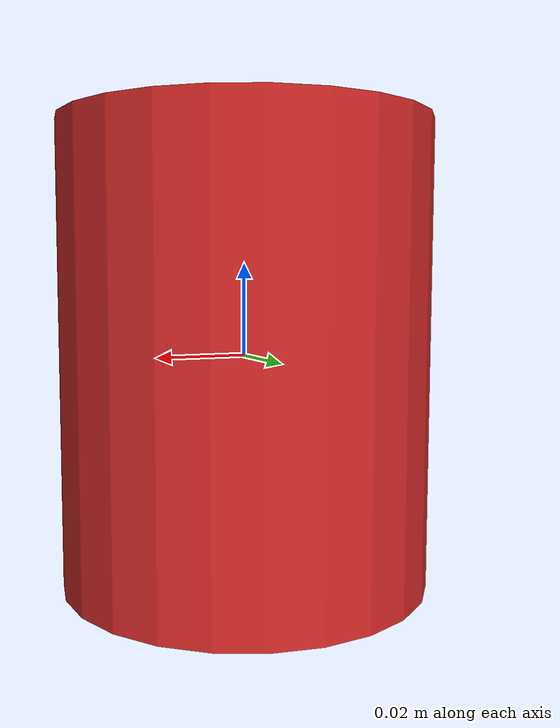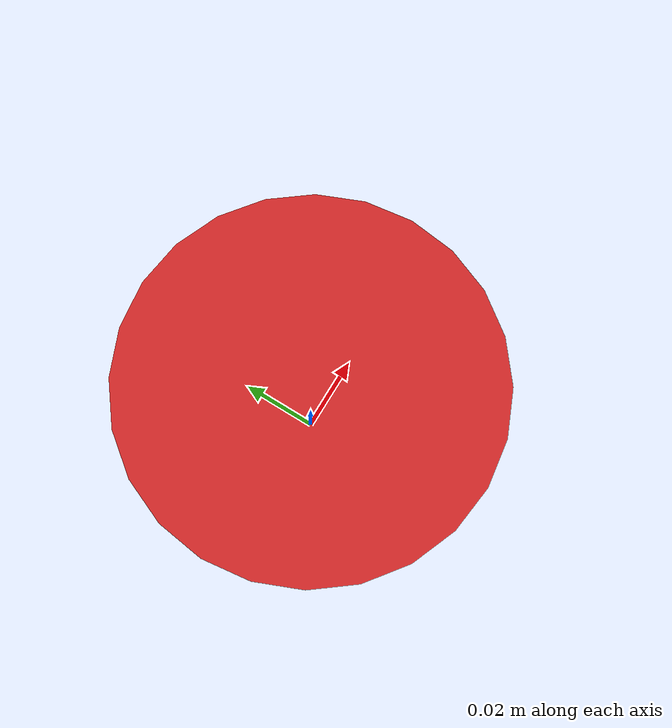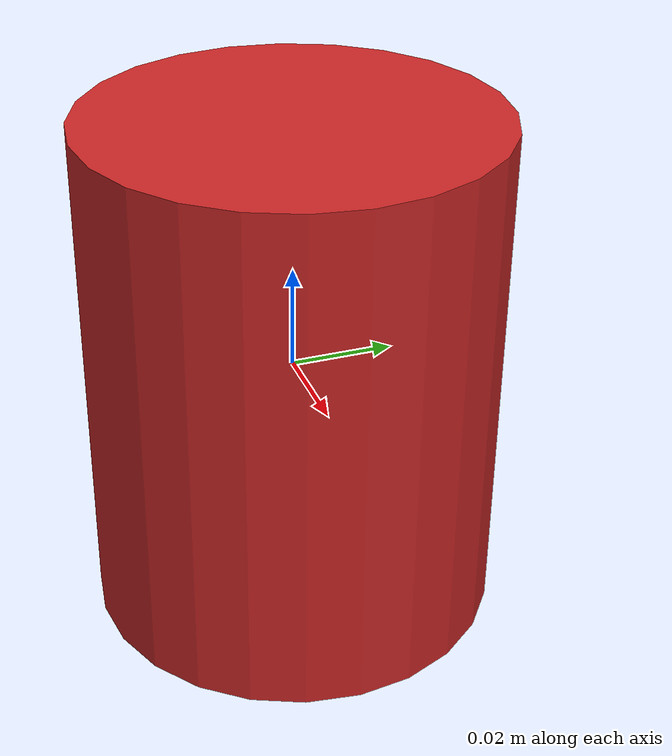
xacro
<?xml version="1.0"?>
<robot xmlns:xacro="http://www.ros.org/wiki/xacro" name="lazDar">
  <xacro:property name="base_radius" value="0.05"/>
  <xacro:property name="base_height" value="0.05"/>
  <xacro:property name="laz_radius" value="0.04"/>
  <xacro:property name="laz_height" value="0.1"/>

  <gazebo reference="laz_base">
    <material>Gazebo/Grey</material>
    <mu1>0.2</mu1>
    <mu2>0.2</mu2>
  </gazebo>

  <link name="laz_rot">
    <visual>
      <geometry>
        <cylinder length="${laz_height}" radius="${laz_radius}"/>
      </geometry>
    </visual>
      <collision>
      <geometry>
        <cylinder length="${laz_height}" radius="${laz_radius}"/>
      </geometry>
    </collision>

    <inertial>
      <mass value="0.1"/>
      <inertia ixx="${(1/12) * 0.1 * (3 * laz_radius * laz_radius + laz_height * laz_height)}" ixy="0" ixz="0" iyy="${(1/12) * 0.1 * (3 * laz_radius * laz_radius + laz_height * laz_height)}" iyz="0" izz="${(1/2) * 0.1 * laz_radius * laz_radius}"/>
    </inertial>
  </link>
  <gazebo reference="laz_rot">
    <material>Gazebo/RedGlow</material>
    <mu1>0.2</mu1>
    <mu2>0.2</mu2>
    <sensor type="ray" name="laz">
       <always_on>true</always_on>
       <pose>${laz_radius} 0 ${laz_height/4} 0 ${-pi/2} 0</pose>
       <visualize>true</visualize>
       <update_rate>30</update_rate>
       <ray>
         <scan>
           <horizontal>
             <samples>15</samples>
             <resolution>3</resolution>
             <min_angle>-${pi/3}</min_angle>
             <max_angle>${pi/3}</max_angle>
           </horizontal>
           <vertical>
             <samples>1</samples>
             <resolution>1</resolution>
             <min_angle>0</min_angle>
             <max_angle>0</max_angle>
           </vertical>
         </scan>
          <range>
           <min>0.05</min>
           <max>15</max>
           <resolution>0.02</resolution>
         </range>
      </ray>
        <plugin name="gazebo_ros_head_hokuyo_controller" filename="libgazebo_ros_laser.so">
            <topicName>/laserscan</topicName>
            <frameName>laz_rot</frameName>
      </plugin>
   </sensor>
  </gazebo>
</robot>
